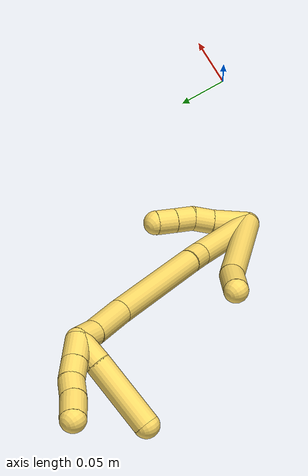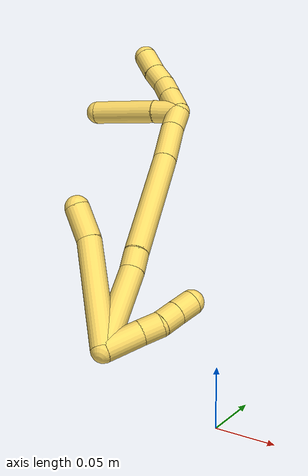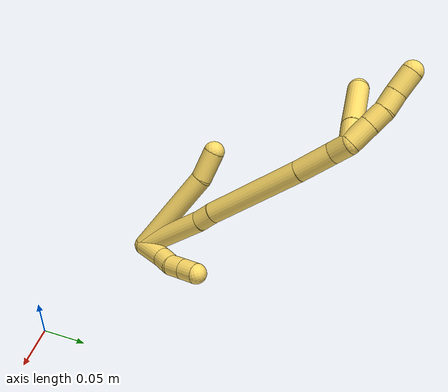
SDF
<sdf version="1.7">
 <world name="default">
  <model name="5">
   <static>0</static>
   <link name="5">
    <collision name="collision-cylinder-e_1_2_8">
     <pose>0.024714 -0.01775 0.048088 0.353595 0.44926 0.081599</pose>
     <geometry><cylinder><radius>0.0125</radius><length>0.113812</length></cylinder></geometry>
     <surface>
      <friction><ode><mu>1.16</mu><mu2>1.16</mu2><slip1>0</slip1><slip2>0</slip2></ode></friction>
      <contact><ode><kp>1e+06</kp><kd>1</kd><max_vel>0</max_vel><min_depth>0.001</min_depth></ode></contact>
     </surface>
    </collision>
    <visual name="visual-cylinder-e_1_2_8">
     <pose>0.024714 -0.01775 0.048088 0.353595 0.44926 0.081599</pose>
     <geometry><cylinder><radius>0.0125</radius><length>0.113812</length></cylinder></geometry>
     <material><ambient>1 0.858824 0.4 1</ambient></material>
    </visual>
    <collision name="collision-cylinder-e_2_8_6">
     <pose>0.060426 -0.043127 0.108352 0.559643 0.65331 0.1941</pose>
     <geometry><cylinder><radius>0.0125</radius><length>0.036188</length></cylinder></geometry>
     <surface>
      <friction><ode><mu>1.16</mu><mu2>1.16</mu2><slip1>0</slip1><slip2>0</slip2></ode></friction>
      <contact><ode><kp>1e+06</kp><kd>1</kd><max_vel>0</max_vel><min_depth>0.001</min_depth></ode></contact>
     </surface>
    </collision>
    <visual name="visual-cylinder-e_2_8_6">
     <pose>0.060426 -0.043127 0.108352 0.559643 0.65331 0.1941</pose>
     <geometry><cylinder><radius>0.0125</radius><length>0.036188</length></cylinder></geometry>
     <material><ambient>1 0.858824 0.4 1</ambient></material>
    </visual>
    <collision name="collision-cylinder-e_1_2_9">
     <pose>-0.003798 0.012079 0.01439 -0.698314 -0.199456 0.072826</pose>
     <geometry><cylinder><radius>0.0125</radius><length>0.038336</length></cylinder></geometry>
     <surface>
      <friction><ode><mu>1.16</mu><mu2>1.16</mu2><slip1>0</slip1><slip2>0</slip2></ode></friction>
      <contact><ode><kp>1e+06</kp><kd>1</kd><max_vel>0</max_vel><min_depth>0.001</min_depth></ode></contact>
     </surface>
    </collision>
    <visual name="visual-cylinder-e_1_2_9">
     <pose>-0.003798 0.012079 0.01439 -0.698314 -0.199456 0.072826</pose>
     <geometry><cylinder><radius>0.0125</radius><length>0.038336</length></cylinder></geometry>
     <material><ambient>1 0.858824 0.4 1</ambient></material>
    </visual>
    <collision name="collision-cylinder-e_2_9_10">
     <pose>-0.00915 0.031526 0.036027 -0.793674 -0.149311 0.062668</pose>
     <geometry><cylinder><radius>0.0125</radius><length>0.020901</length></cylinder></geometry>
     <surface>
      <friction><ode><mu>1.16</mu><mu2>1.16</mu2><slip1>0</slip1><slip2>0</slip2></ode></friction>
      <contact><ode><kp>1e+06</kp><kd>1</kd><max_vel>0</max_vel><min_depth>0.001</min_depth></ode></contact>
     </surface>
    </collision>
    <visual name="visual-cylinder-e_2_9_10">
     <pose>-0.00915 0.031526 0.036027 -0.793674 -0.149311 0.062668</pose>
     <geometry><cylinder><radius>0.0125</radius><length>0.020901</length></cylinder></geometry>
     <material><ambient>1 0.858824 0.4 1</ambient></material>
    </visual>
    <collision name="collision-cylinder-e_3_10_11">
     <pose>-0.01225 0.043427 0.052141 -0.472611 -0.153964 0.037144</pose>
     <geometry><cylinder><radius>0.0125</radius><length>0.020156</length></cylinder></geometry>
     <surface>
      <friction><ode><mu>1.16</mu><mu2>1.16</mu2><slip1>0</slip1><slip2>0</slip2></ode></friction>
      <contact><ode><kp>1e+06</kp><kd>1</kd><max_vel>0</max_vel><min_depth>0.001</min_depth></ode></contact>
     </surface>
    </collision>
    <visual name="visual-cylinder-e_3_10_11">
     <pose>-0.01225 0.043427 0.052141 -0.472611 -0.153964 0.037144</pose>
     <geometry><cylinder><radius>0.0125</radius><length>0.020156</length></cylinder></geometry>
     <material><ambient>1 0.858824 0.4 1</ambient></material>
    </visual>
    <collision name="collision-cylinder-e_4_11_5">
     <pose>-0.01545 0.052721 0.069995 -0.487095 -0.161215 0.04014</pose>
     <geometry><cylinder><radius>0.0125</radius><length>0.020607</length></cylinder></geometry>
     <surface>
      <friction><ode><mu>1.16</mu><mu2>1.16</mu2><slip1>0</slip1><slip2>0</slip2></ode></friction>
      <contact><ode><kp>1e+06</kp><kd>1</kd><max_vel>0</max_vel><min_depth>0.001</min_depth></ode></contact>
     </surface>
    </collision>
    <visual name="visual-cylinder-e_4_11_5">
     <pose>-0.01545 0.052721 0.069995 -0.487095 -0.161215 0.04014</pose>
     <geometry><cylinder><radius>0.0125</radius><length>0.020607</length></cylinder></geometry>
     <material><ambient>1 0.858824 0.4 1</ambient></material>
    </visual>
    <collision name="collision-cylinder-e_1_2_12">
     <pose>0.008132 0.001314 0.043333 -0.030307 0.185426 -0.002818</pose>
     <geometry><cylinder><radius>0.0125</radius><length>0.088218</length></cylinder></geometry>
     <surface>
      <friction><ode><mu>1.16</mu><mu2>1.16</mu2><slip1>0</slip1><slip2>0</slip2></ode></friction>
      <contact><ode><kp>1e+06</kp><kd>1</kd><max_vel>0</max_vel><min_depth>0.001</min_depth></ode></contact>
     </surface>
    </collision>
    <visual name="visual-cylinder-e_1_2_12">
     <pose>0.008132 0.001314 0.043333 -0.030307 0.185426 -0.002818</pose>
     <geometry><cylinder><radius>0.0125</radius><length>0.088218</length></cylinder></geometry>
     <material><ambient>1 0.858824 0.4 1</ambient></material>
    </visual>
    <collision name="collision-cylinder-e_2_12_13">
     <pose>0.019479 0.002541 0.097037 0.008362 0.300575 0.001266</pose>
     <geometry><cylinder><radius>0.0125</radius><length>0.021717</length></cylinder></geometry>
     <surface>
      <friction><ode><mu>1.16</mu><mu2>1.16</mu2><slip1>0</slip1><slip2>0</slip2></ode></friction>
      <contact><ode><kp>1e+06</kp><kd>1</kd><max_vel>0</max_vel><min_depth>0.001</min_depth></ode></contact>
     </surface>
    </collision>
    <visual name="visual-cylinder-e_2_12_13">
     <pose>0.019479 0.002541 0.097037 0.008362 0.300575 0.001266</pose>
     <geometry><cylinder><radius>0.0125</radius><length>0.021717</length></cylinder></geometry>
     <material><ambient>1 0.858824 0.4 1</ambient></material>
    </visual>
    <collision name="collision-cylinder-e_3_13_14">
     <pose>0.034777 0.001687 0.166834 0.012903 0.200587 0.001299</pose>
     <geometry><cylinder><radius>0.0125</radius><length>0.121291</length></cylinder></geometry>
     <surface>
      <friction><ode><mu>1.16</mu><mu2>1.16</mu2><slip1>0</slip1><slip2>0</slip2></ode></friction>
      <contact><ode><kp>1e+06</kp><kd>1</kd><max_vel>0</max_vel><min_depth>0.001</min_depth></ode></contact>
     </surface>
    </collision>
    <visual name="visual-cylinder-e_3_13_14">
     <pose>0.034777 0.001687 0.166834 0.012903 0.200587 0.001299</pose>
     <geometry><cylinder><radius>0.0125</radius><length>0.121291</length></cylinder></geometry>
     <material><ambient>1 0.858824 0.4 1</ambient></material>
    </visual>
    <collision name="collision-cylinder-e_4_14_15">
     <pose>0.051878 -0.000154 0.248304 0.048714 0.223534 0.005468</pose>
     <geometry><cylinder><radius>0.0125</radius><length>0.04527</length></cylinder></geometry>
     <surface>
      <friction><ode><mu>1.16</mu><mu2>1.16</mu2><slip1>0</slip1><slip2>0</slip2></ode></friction>
      <contact><ode><kp>1e+06</kp><kd>1</kd><max_vel>0</max_vel><min_depth>0.001</min_depth></ode></contact>
     </surface>
    </collision>
    <visual name="visual-cylinder-e_4_14_15">
     <pose>0.051878 -0.000154 0.248304 0.048714 0.223534 0.005468</pose>
     <geometry><cylinder><radius>0.0125</radius><length>0.04527</length></cylinder></geometry>
     <material><ambient>1 0.858824 0.4 1</ambient></material>
    </visual>
    <collision name="collision-cylinder-e_5_15_1">
     <pose>0.060314 -0.00015 0.281541 -0.096164 0.295113 -0.014304</pose>
     <geometry><cylinder><radius>0.0125</radius><length>0.023503</length></cylinder></geometry>
     <surface>
      <friction><ode><mu>1.16</mu><mu2>1.16</mu2><slip1>0</slip1><slip2>0</slip2></ode></friction>
      <contact><ode><kp>1e+06</kp><kd>1</kd><max_vel>0</max_vel><min_depth>0.001</min_depth></ode></contact>
     </surface>
    </collision>
    <visual name="visual-cylinder-e_5_15_1">
     <pose>0.060314 -0.00015 0.281541 -0.096164 0.295113 -0.014304</pose>
     <geometry><cylinder><radius>0.0125</radius><length>0.023503</length></cylinder></geometry>
     <material><ambient>1 0.858824 0.4 1</ambient></material>
    </visual>
    <collision name="collision-cylinder-e_1_1_16">
     <pose>0.067236 -0.006632 0.304262 0.580486 0.248841 0.074674</pose>
     <geometry><cylinder><radius>0.0125</radius><length>0.028452</length></cylinder></geometry>
     <surface>
      <friction><ode><mu>1.16</mu><mu2>1.16</mu2><slip1>0</slip1><slip2>0</slip2></ode></friction>
      <contact><ode><kp>1e+06</kp><kd>1</kd><max_vel>0</max_vel><min_depth>0.001</min_depth></ode></contact>
     </surface>
    </collision>
    <visual name="visual-cylinder-e_1_1_16">
     <pose>0.067236 -0.006632 0.304262 0.580486 0.248841 0.074674</pose>
     <geometry><cylinder><radius>0.0125</radius><length>0.028452</length></cylinder></geometry>
     <material><ambient>1 0.858824 0.4 1</ambient></material>
    </visual>
    <collision name="collision-cylinder-e_2_16_17">
     <pose>0.073464 -0.019984 0.32466 0.578425 0.251768 0.075277</pose>
     <geometry><cylinder><radius>0.0125</radius><length>0.021872</length></cylinder></geometry>
     <surface>
      <friction><ode><mu>1.16</mu><mu2>1.16</mu2><slip1>0</slip1><slip2>0</slip2></ode></friction>
      <contact><ode><kp>1e+06</kp><kd>1</kd><max_vel>0</max_vel><min_depth>0.001</min_depth></ode></contact>
     </surface>
    </collision>
    <visual name="visual-cylinder-e_2_16_17">
     <pose>0.073464 -0.019984 0.32466 0.578425 0.251768 0.075277</pose>
     <geometry><cylinder><radius>0.0125</radius><length>0.021872</length></cylinder></geometry>
     <material><ambient>1 0.858824 0.4 1</ambient></material>
    </visual>
    <collision name="collision-cylinder-e_3_17_18">
     <pose>0.080518 -0.032774 0.340949 0.756245 0.401468 0.161304</pose>
     <geometry><cylinder><radius>0.0125</radius><length>0.022164</length></cylinder></geometry>
     <surface>
      <friction><ode><mu>1.16</mu><mu2>1.16</mu2><slip1>0</slip1><slip2>0</slip2></ode></friction>
      <contact><ode><kp>1e+06</kp><kd>1</kd><max_vel>0</max_vel><min_depth>0.001</min_depth></ode></contact>
     </surface>
    </collision>
    <visual name="visual-cylinder-e_3_17_18">
     <pose>0.080518 -0.032774 0.340949 0.756245 0.401468 0.161304</pose>
     <geometry><cylinder><radius>0.0125</radius><length>0.022164</length></cylinder></geometry>
     <material><ambient>1 0.858824 0.4 1</ambient></material>
    </visual>
    <collision name="collision-cylinder-e_4_18_4">
     <pose>0.090261 -0.047308 0.358526 0.638233 0.4044 0.135262</pose>
     <geometry><cylinder><radius>0.0125</radius><length>0.027512</length></cylinder></geometry>
     <surface>
      <friction><ode><mu>1.16</mu><mu2>1.16</mu2><slip1>0</slip1><slip2>0</slip2></ode></friction>
      <contact><ode><kp>1e+06</kp><kd>1</kd><max_vel>0</max_vel><min_depth>0.001</min_depth></ode></contact>
     </surface>
    </collision>
    <visual name="visual-cylinder-e_4_18_4">
     <pose>0.090261 -0.047308 0.358526 0.638233 0.4044 0.135262</pose>
     <geometry><cylinder><radius>0.0125</radius><length>0.027512</length></cylinder></geometry>
     <material><ambient>1 0.858824 0.4 1</ambient></material>
    </visual>
    <collision name="collision-cylinder-e_1_1_19">
     <pose>0.065344 -0.013166 0.293214 1.53667 0.113778 0.109969</pose>
     <geometry><cylinder><radius>0.0125</radius><length>0.028391</length></cylinder></geometry>
     <surface>
      <friction><ode><mu>1.16</mu><mu2>1.16</mu2><slip1>0</slip1><slip2>0</slip2></ode></friction>
      <contact><ode><kp>1e+06</kp><kd>1</kd><max_vel>0</max_vel><min_depth>0.001</min_depth></ode></contact>
     </surface>
    </collision>
    <visual name="visual-cylinder-e_1_1_19">
     <pose>0.065344 -0.013166 0.293214 1.53667 0.113778 0.109969</pose>
     <geometry><cylinder><radius>0.0125</radius><length>0.028391</length></cylinder></geometry>
     <material><ambient>1 0.858824 0.4 1</ambient></material>
    </visual>
    <collision name="collision-cylinder-e_2_19_3">
     <pose>0.069022 -0.062977 0.295143 1.53029 0.057764 0.055472</pose>
     <geometry><cylinder><radius>0.0125</radius><length>0.071609</length></cylinder></geometry>
     <surface>
      <friction><ode><mu>1.16</mu><mu2>1.16</mu2><slip1>0</slip1><slip2>0</slip2></ode></friction>
      <contact><ode><kp>1e+06</kp><kd>1</kd><max_vel>0</max_vel><min_depth>0.001</min_depth></ode></contact>
     </surface>
    </collision>
    <visual name="visual-cylinder-e_2_19_3">
     <pose>0.069022 -0.062977 0.295143 1.53029 0.057764 0.055472</pose>
     <geometry><cylinder><radius>0.0125</radius><length>0.071609</length></cylinder></geometry>
     <material><ambient>1 0.858824 0.4 1</ambient></material>
    </visual>
    <collision name="collision-sphere-3">
     <pose>0.071089 -0.098692 0.29659 0 -0 0</pose>
     <geometry><sphere><radius>0.0125</radius></sphere></geometry>
     <surface>
      <friction><ode><mu>1.16</mu><mu2>1.16</mu2><slip1>0</slip1><slip2>0</slip2></ode></friction>
      <contact><ode><kp>1e+06</kp><kd>1</kd><max_vel>0</max_vel><min_depth>0.001</min_depth></ode></contact>
     </surface>
    </collision>
    <visual name="visual-sphere-3">
     <pose>0.071089 -0.098692 0.29659 0 -0 0</pose>
     <geometry><sphere><radius>0.0125</radius></sphere></geometry>
     <material><ambient>1 0.858824 0.4 1</ambient></material>
    </visual>
    <collision name="collision-sphere-19">
     <pose>0.066955 -0.027261 0.293695 0 -0 0</pose>
     <geometry><sphere><radius>0.0125</radius></sphere></geometry>
     <surface>
      <friction><ode><mu>1.16</mu><mu2>1.16</mu2><slip1>0</slip1><slip2>0</slip2></ode></friction>
      <contact><ode><kp>1e+06</kp><kd>1</kd><max_vel>0</max_vel><min_depth>0.001</min_depth></ode></contact>
     </surface>
    </collision>
    <visual name="visual-sphere-19">
     <pose>0.066955 -0.027261 0.293695 0 -0 0</pose>
     <geometry><sphere><radius>0.0125</radius></sphere></geometry>
     <material><ambient>1 0.858824 0.4 1</ambient></material>
    </visual>
    <collision name="collision-sphere-11">
     <pose>-0.013796 0.047961 0.061008 0 -0 0</pose>
     <geometry><sphere><radius>0.0125</radius></sphere></geometry>
     <surface>
      <friction><ode><mu>1.16</mu><mu2>1.16</mu2><slip1>0</slip1><slip2>0</slip2></ode></friction>
      <contact><ode><kp>1e+06</kp><kd>1</kd><max_vel>0</max_vel><min_depth>0.001</min_depth></ode></contact>
     </surface>
    </collision>
    <visual name="visual-sphere-11">
     <pose>-0.013796 0.047961 0.061008 0 -0 0</pose>
     <geometry><sphere><radius>0.0125</radius></sphere></geometry>
     <material><ambient>1 0.858824 0.4 1</ambient></material>
    </visual>
    <collision name="collision-sphere-10">
     <pose>-0.010705 0.038894 0.043274 0 -0 0</pose>
     <geometry><sphere><radius>0.0125</radius></sphere></geometry>
     <surface>
      <friction><ode><mu>1.16</mu><mu2>1.16</mu2><slip1>0</slip1><slip2>0</slip2></ode></friction>
      <contact><ode><kp>1e+06</kp><kd>1</kd><max_vel>0</max_vel><min_depth>0.001</min_depth></ode></contact>
     </surface>
    </collision>
    <visual name="visual-sphere-10">
     <pose>-0.010705 0.038894 0.043274 0 -0 0</pose>
     <geometry><sphere><radius>0.0125</radius></sphere></geometry>
     <material><ambient>1 0.858824 0.4 1</ambient></material>
    </visual>
    <collision name="collision-sphere-6">
     <pose>0.071424 -0.050755 0.120528 0 -0 0</pose>
     <geometry><sphere><radius>0.0125</radius></sphere></geometry>
     <surface>
      <friction><ode><mu>1.16</mu><mu2>1.16</mu2><slip1>0</slip1><slip2>0</slip2></ode></friction>
      <contact><ode><kp>1e+06</kp><kd>1</kd><max_vel>0</max_vel><min_depth>0.001</min_depth></ode></contact>
     </surface>
    </collision>
    <visual name="visual-sphere-6">
     <pose>0.071424 -0.050755 0.120528 0 -0 0</pose>
     <geometry><sphere><radius>0.0125</radius></sphere></geometry>
     <material><ambient>1 0.858824 0.4 1</ambient></material>
    </visual>
    <collision name="collision-sphere-9">
     <pose>-0.007596 0.024159 0.028781 0 -0 0</pose>
     <geometry><sphere><radius>0.0125</radius></sphere></geometry>
     <surface>
      <friction><ode><mu>1.16</mu><mu2>1.16</mu2><slip1>0</slip1><slip2>0</slip2></ode></friction>
      <contact><ode><kp>1e+06</kp><kd>1</kd><max_vel>0</max_vel><min_depth>0.001</min_depth></ode></contact>
     </surface>
    </collision>
    <visual name="visual-sphere-9">
     <pose>-0.007596 0.024159 0.028781 0 -0 0</pose>
     <geometry><sphere><radius>0.0125</radius></sphere></geometry>
     <material><ambient>1 0.858824 0.4 1</ambient></material>
    </visual>
    <collision name="collision-sphere-2">
     <geometry><sphere><radius>0.0125</radius></sphere></geometry>
     <surface>
      <friction><ode><mu>1.16</mu><mu2>1.16</mu2><slip1>0</slip1><slip2>0</slip2></ode></friction>
      <contact><ode><kp>1e+06</kp><kd>1</kd><max_vel>0</max_vel><min_depth>0.001</min_depth></ode></contact>
     </surface>
    </collision>
    <visual name="visual-sphere-2">
     <geometry><sphere><radius>0.0125</radius></sphere></geometry>
     <material><ambient>1 0.858824 0.4 1</ambient></material>
    </visual>
    <collision name="collision-sphere-8">
     <pose>0.049429 -0.035499 0.096176 0 -0 0</pose>
     <geometry><sphere><radius>0.0125</radius></sphere></geometry>
     <surface>
      <friction><ode><mu>1.16</mu><mu2>1.16</mu2><slip1>0</slip1><slip2>0</slip2></ode></friction>
      <contact><ode><kp>1e+06</kp><kd>1</kd><max_vel>0</max_vel><min_depth>0.001</min_depth></ode></contact>
     </surface>
    </collision>
    <visual name="visual-sphere-8">
     <pose>0.049429 -0.035499 0.096176 0 -0 0</pose>
     <geometry><sphere><radius>0.0125</radius></sphere></geometry>
     <material><ambient>1 0.858824 0.4 1</ambient></material>
    </visual>
    <collision name="collision-sphere-5">
     <pose>-0.017104 0.057481 0.078982 0 -0 0</pose>
     <geometry><sphere><radius>0.0125</radius></sphere></geometry>
     <surface>
      <friction><ode><mu>1.16</mu><mu2>1.16</mu2><slip1>0</slip1><slip2>0</slip2></ode></friction>
      <contact><ode><kp>1e+06</kp><kd>1</kd><max_vel>0</max_vel><min_depth>0.001</min_depth></ode></contact>
     </surface>
    </collision>
    <visual name="visual-sphere-5">
     <pose>-0.017104 0.057481 0.078982 0 -0 0</pose>
     <geometry><sphere><radius>0.0125</radius></sphere></geometry>
     <material><ambient>1 0.858824 0.4 1</ambient></material>
    </visual>
    <collision name="collision-sphere-12">
     <pose>0.016264 0.002627 0.086666 0 -0 0</pose>
     <geometry><sphere><radius>0.0125</radius></sphere></geometry>
     <surface>
      <friction><ode><mu>1.16</mu><mu2>1.16</mu2><slip1>0</slip1><slip2>0</slip2></ode></friction>
      <contact><ode><kp>1e+06</kp><kd>1</kd><max_vel>0</max_vel><min_depth>0.001</min_depth></ode></contact>
     </surface>
    </collision>
    <visual name="visual-sphere-12">
     <pose>0.016264 0.002627 0.086666 0 -0 0</pose>
     <geometry><sphere><radius>0.0125</radius></sphere></geometry>
     <material><ambient>1 0.858824 0.4 1</ambient></material>
    </visual>
    <collision name="collision-sphere-13">
     <pose>0.022694 0.002454 0.107409 0 -0 0</pose>
     <geometry><sphere><radius>0.0125</radius></sphere></geometry>
     <surface>
      <friction><ode><mu>1.16</mu><mu2>1.16</mu2><slip1>0</slip1><slip2>0</slip2></ode></friction>
      <contact><ode><kp>1e+06</kp><kd>1</kd><max_vel>0</max_vel><min_depth>0.001</min_depth></ode></contact>
     </surface>
    </collision>
    <visual name="visual-sphere-13">
     <pose>0.022694 0.002454 0.107409 0 -0 0</pose>
     <geometry><sphere><radius>0.0125</radius></sphere></geometry>
     <material><ambient>1 0.858824 0.4 1</ambient></material>
    </visual>
    <collision name="collision-sphere-14">
     <pose>0.046861 0.00092 0.226258 0 -0 0</pose>
     <geometry><sphere><radius>0.0125</radius></sphere></geometry>
     <surface>
      <friction><ode><mu>1.16</mu><mu2>1.16</mu2><slip1>0</slip1><slip2>0</slip2></ode></friction>
      <contact><ode><kp>1e+06</kp><kd>1</kd><max_vel>0</max_vel><min_depth>0.001</min_depth></ode></contact>
     </surface>
    </collision>
    <visual name="visual-sphere-14">
     <pose>0.046861 0.00092 0.226258 0 -0 0</pose>
     <geometry><sphere><radius>0.0125</radius></sphere></geometry>
     <material><ambient>1 0.858824 0.4 1</ambient></material>
    </visual>
    <collision name="collision-sphere-15">
     <pose>0.056896 -0.001229 0.27035 0 -0 0</pose>
     <geometry><sphere><radius>0.0125</radius></sphere></geometry>
     <surface>
      <friction><ode><mu>1.16</mu><mu2>1.16</mu2><slip1>0</slip1><slip2>0</slip2></ode></friction>
      <contact><ode><kp>1e+06</kp><kd>1</kd><max_vel>0</max_vel><min_depth>0.001</min_depth></ode></contact>
     </surface>
    </collision>
    <visual name="visual-sphere-15">
     <pose>0.056896 -0.001229 0.27035 0 -0 0</pose>
     <geometry><sphere><radius>0.0125</radius></sphere></geometry>
     <material><ambient>1 0.858824 0.4 1</ambient></material>
    </visual>
    <collision name="collision-sphere-1">
     <pose>0.063732 0.00093 0.292733 0 -0 0</pose>
     <geometry><sphere><radius>0.0125</radius></sphere></geometry>
     <surface>
      <friction><ode><mu>1.16</mu><mu2>1.16</mu2><slip1>0</slip1><slip2>0</slip2></ode></friction>
      <contact><ode><kp>1e+06</kp><kd>1</kd><max_vel>0</max_vel><min_depth>0.001</min_depth></ode></contact>
     </surface>
    </collision>
    <visual name="visual-sphere-1">
     <pose>0.063732 0.00093 0.292733 0 -0 0</pose>
     <geometry><sphere><radius>0.0125</radius></sphere></geometry>
     <material><ambient>1 0.858824 0.4 1</ambient></material>
    </visual>
    <collision name="collision-sphere-18">
     <pose>0.084849 -0.039774 0.348369 0 -0 0</pose>
     <geometry><sphere><radius>0.0125</radius></sphere></geometry>
     <surface>
      <friction><ode><mu>1.16</mu><mu2>1.16</mu2><slip1>0</slip1><slip2>0</slip2></ode></friction>
      <contact><ode><kp>1e+06</kp><kd>1</kd><max_vel>0</max_vel><min_depth>0.001</min_depth></ode></contact>
     </surface>
    </collision>
    <visual name="visual-sphere-18">
     <pose>0.084849 -0.039774 0.348369 0 -0 0</pose>
     <geometry><sphere><radius>0.0125</radius></sphere></geometry>
     <material><ambient>1 0.858824 0.4 1</ambient></material>
    </visual>
    <collision name="collision-sphere-16">
     <pose>0.070739 -0.014194 0.315792 0 -0 0</pose>
     <geometry><sphere><radius>0.0125</radius></sphere></geometry>
     <surface>
      <friction><ode><mu>1.16</mu><mu2>1.16</mu2><slip1>0</slip1><slip2>0</slip2></ode></friction>
      <contact><ode><kp>1e+06</kp><kd>1</kd><max_vel>0</max_vel><min_depth>0.001</min_depth></ode></contact>
     </surface>
    </collision>
    <visual name="visual-sphere-16">
     <pose>0.070739 -0.014194 0.315792 0 -0 0</pose>
     <geometry><sphere><radius>0.0125</radius></sphere></geometry>
     <material><ambient>1 0.858824 0.4 1</ambient></material>
    </visual>
    <collision name="collision-sphere-17">
     <pose>0.076188 -0.025774 0.333529 0 -0 0</pose>
     <geometry><sphere><radius>0.0125</radius></sphere></geometry>
     <surface>
      <friction><ode><mu>1.16</mu><mu2>1.16</mu2><slip1>0</slip1><slip2>0</slip2></ode></friction>
      <contact><ode><kp>1e+06</kp><kd>1</kd><max_vel>0</max_vel><min_depth>0.001</min_depth></ode></contact>
     </surface>
    </collision>
    <visual name="visual-sphere-17">
     <pose>0.076188 -0.025774 0.333529 0 -0 0</pose>
     <geometry><sphere><radius>0.0125</radius></sphere></geometry>
     <material><ambient>1 0.858824 0.4 1</ambient></material>
    </visual>
    <collision name="collision-sphere-4">
     <pose>0.095674 -0.054842 0.368683 0 -0 0</pose>
     <geometry><sphere><radius>0.0125</radius></sphere></geometry>
     <surface>
      <friction><ode><mu>1.16</mu><mu2>1.16</mu2><slip1>0</slip1><slip2>0</slip2></ode></friction>
      <contact><ode><kp>1e+06</kp><kd>1</kd><max_vel>0</max_vel><min_depth>0.001</min_depth></ode></contact>
     </surface>
    </collision>
    <visual name="visual-sphere-4">
     <pose>0.095674 -0.054842 0.368683 0 -0 0</pose>
     <geometry><sphere><radius>0.0125</radius></sphere></geometry>
     <material><ambient>1 0.858824 0.4 1</ambient></material>
    </visual>
    <inertial>
     <pose>0.037077 -0.010225 0.159805 0 -0 0</pose>
     <mass>0.75</mass>
     <inertia>
      <ixx>0.000423</ixx>
      <ixy>0</ixy>
      <ixz>0</ixz>
      <iyy>0.000373</iyy>
      <iyz>0</iyz>
      <izz>1.5e-05</izz>
     </inertia>
    </inertial>
   </link>
   <pose>-0.151109 0.060797 0.011494 0.291435 -1.07437 -1.67874</pose>
  </model>
 </world>
</sdf>
